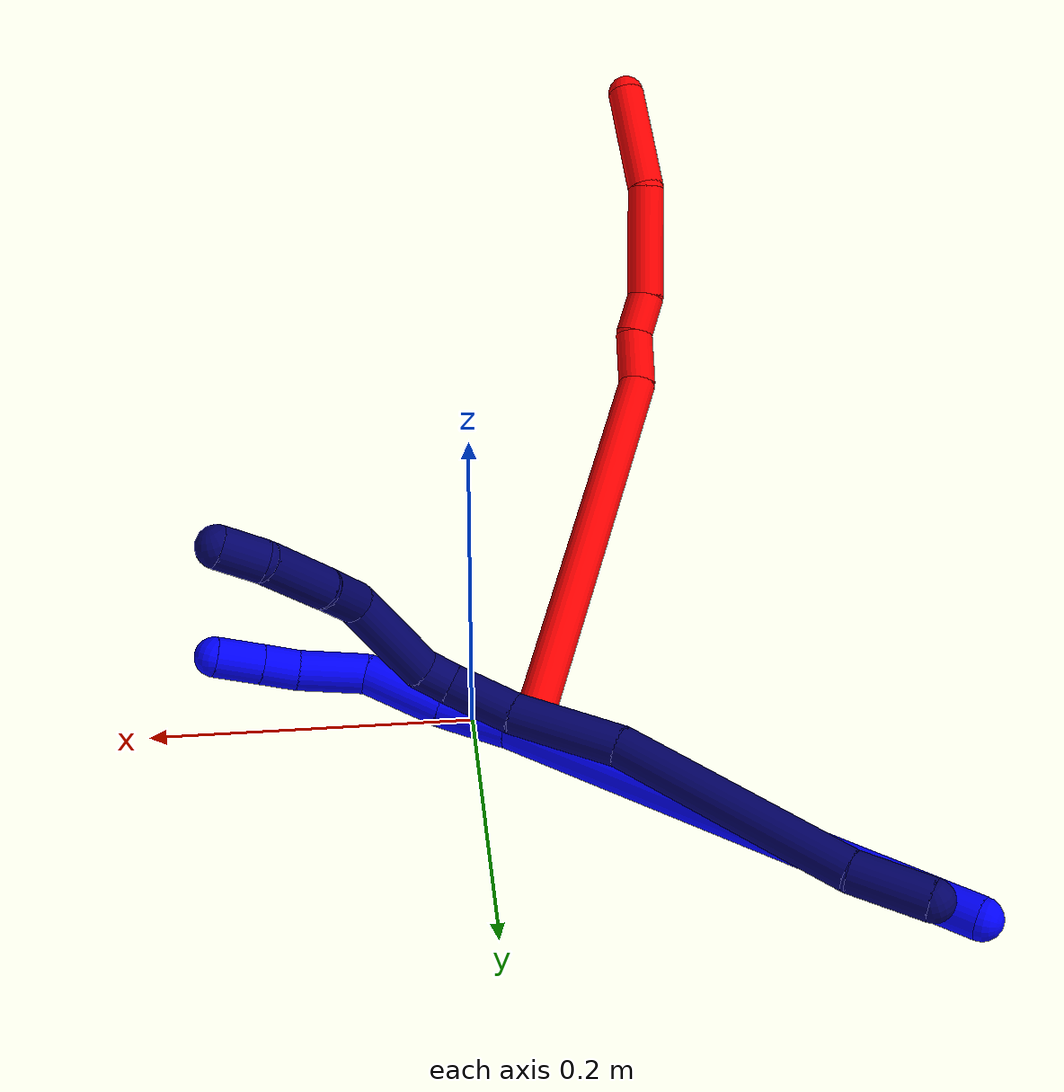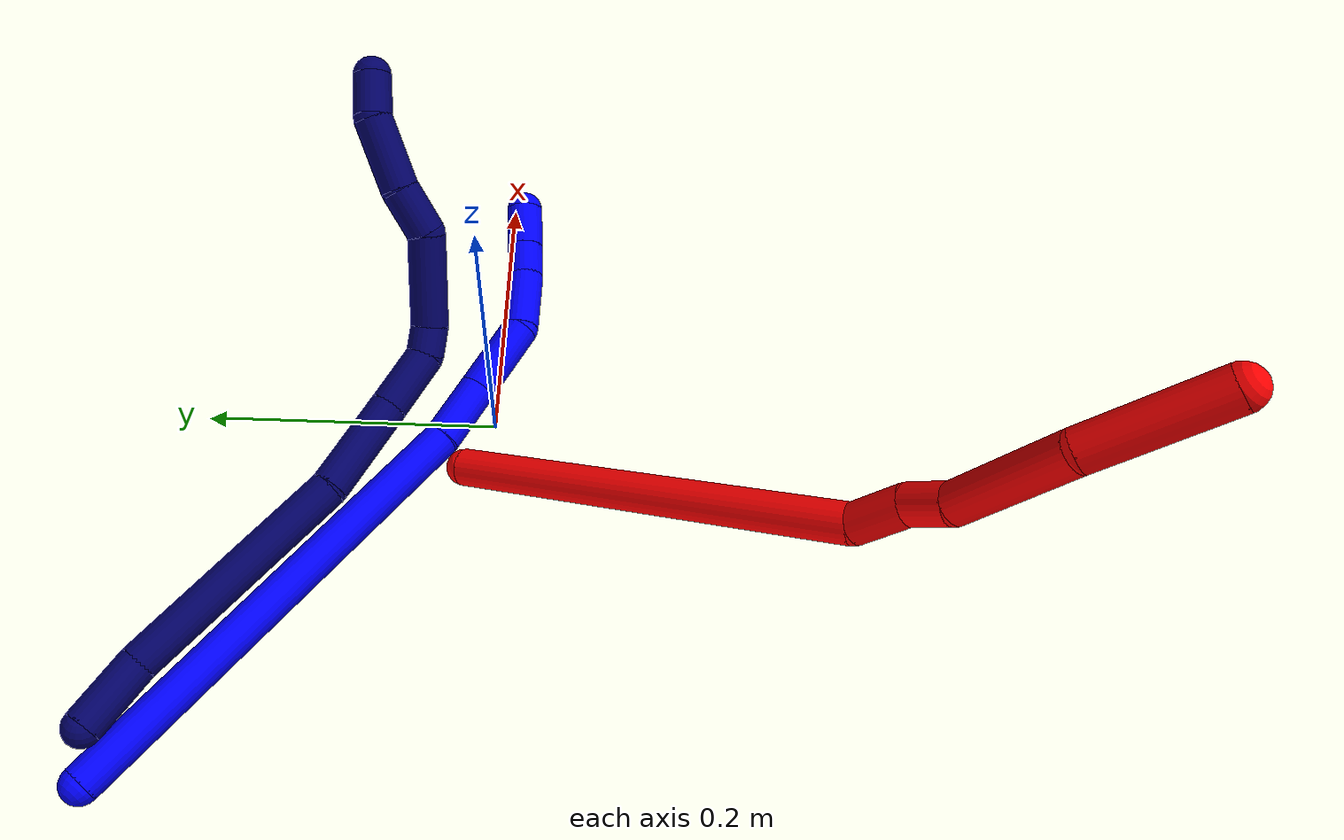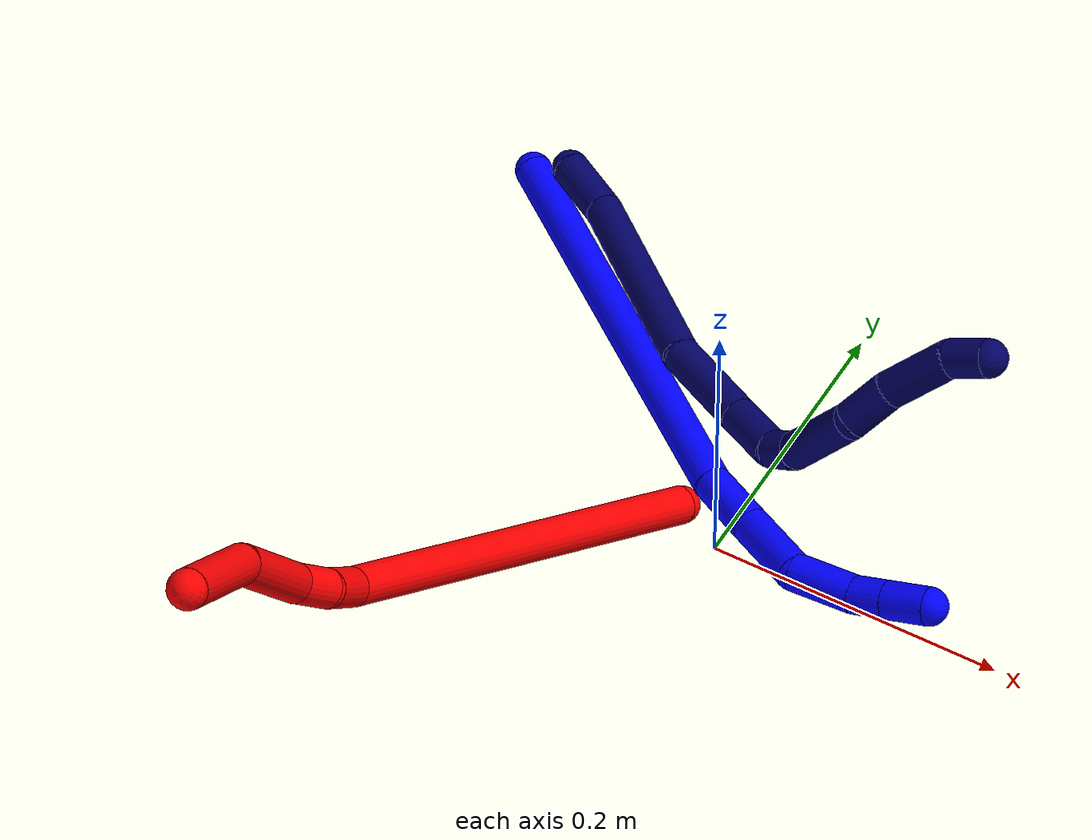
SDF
<sdf version="1.7">
 <world name="default">
  <model name="photoneo_s_sensor">
   <static>1</static>
   <pose>0 0 2 1.57079 1.57079 3.14159</pose>
   <link name="link">
    <inertial><mass>0.1</mass></inertial>
    <sensor name="sensor" type="depth">
     <update_rate>30</update_rate>
     <camera>
      <horizontal_fov>1.22</horizontal_fov>
      <image><width>1920</width><height>1200</height><format>B8G8R8</format></image>
      <clip><near>0.1</near><far>4</far></clip>
      <depth_camera><output>points</output></depth_camera>
     </camera>
     <plugin name="camera_plugin" filename="libgazebo_ros_depth_camera.so">
      <baseline>0.2</baseline>
      <alwaysOn>1</alwaysOn>
      <updateRate>0.0</updateRate>
      <cameraName>camera_ir</cameraName>
      <imageTopicName>/camera/color/image_raw</imageTopicName>
      <cameraInfoTopicName>/camera/color/camera_info</cameraInfoTopicName>
      <depthImageTopicName>/camera/depth/image_raw</depthImageTopicName>
      <depthImageCameraInfoTopicName>/camera/depth/camera_info</depthImageCameraInfoTopicName>
      <pointCloudTopicName>/camera/depth/points</pointCloudTopicName>
      <frameName>fr_optical</frameName>
      <pointCloudCutoff>0.1</pointCloudCutoff>
      <pointCloudCutoffMax>2.0</pointCloudCutoffMax>
      <distortionK1>0</distortionK1>
      <distortionK2>0</distortionK2>
      <distortionK3>0</distortionK3>
      <distortionT1>0</distortionT1>
      <distortionT2>0</distortionT2>
      <CxPrime>0</CxPrime>
      <Cx>0</Cx>
      <Cy>0</Cy>
      <focalLength>0</focalLength>
      <hackBaseline>0</hackBaseline>
     </plugin>
    </sensor>
   </link>
  </model>
  <model name="bin">
   <static>1</static>
   <link name="bottom">
    <collision name="collision-bottom">
     <pose>0 0 -0.01 0 -0 0</pose>
     <geometry><box><size>0.8 0.6 0.02</size></box></geometry>
     <surface>
      <friction><ode><mu>100</mu><mu2>100</mu2></ode></friction>
      <contact><collide_bitmask>65535</collide_bitmask></contact>
     </surface>
    </collision>
   </link>
   <link name="west_wall">
    <collision name="collision-west_wall">
     <pose>-0.41 0 0.1 0 -0 0</pose>
     <geometry><box><size>0.02 0.6 0.2</size></box></geometry>
     <surface>
      <friction><ode><mu>100</mu><mu2>100</mu2></ode></friction>
      <contact><collide_bitmask>65535</collide_bitmask></contact>
     </surface>
    </collision>
   </link>
   <link name="east_wall">
    <collision name="collision-east_wall">
     <pose>0.41 0 0.1 0 -0 0</pose>
     <geometry><box><size>0.02 0.6 0.2</size></box></geometry>
     <surface>
      <friction><ode><mu>100</mu><mu2>100</mu2></ode></friction>
      <contact><collide_bitmask>65535</collide_bitmask></contact>
     </surface>
    </collision>
   </link>
   <link name="south_wall">
    <collision name="collision-south_wall">
     <pose>0 -0.31 0.1 0 -0 0</pose>
     <geometry><box><size>0.8 0.02 0.2</size></box></geometry>
     <surface>
      <friction><ode><mu>100</mu><mu2>100</mu2></ode></friction>
      <contact><collide_bitmask>65535</collide_bitmask></contact>
     </surface>
    </collision>
   </link>
   <link name="north_wall">
    <collision name="collision-north_wall">
     <pose>0 0.31 0.1 0 -0 0</pose>
     <geometry><box><size>0.8 0.02 0.2</size></box></geometry>
     <surface>
      <friction><ode><mu>100</mu><mu2>100</mu2></ode></friction>
      <contact><collide_bitmask>65535</collide_bitmask></contact>
     </surface>
    </collision>
   </link>
  </model>
  <model name="1">
   <static>0</static>
   <link name="1">
    <collision name="collision-cylinder-e_1_1_4">
     <pose>-0.007108 -0.011797 -0.151948 3.06411 -0.046606 -1.08274</pose>
     <geometry><cylinder><radius>0.0125</radius><length>0.305142</length></cylinder></geometry>
     <surface>
      <friction><ode><mu>1.16</mu><mu2>1.16</mu2><slip1>0</slip1><slip2>0</slip2></ode></friction>
      <contact><ode><kp>1e+06</kp><kd>1</kd><max_vel>0</max_vel><min_depth>0.001</min_depth></ode></contact>
     </surface>
    </collision>
    <visual name="visual-cylinder-e_1_1_4">
     <pose>-0.007108 -0.011797 -0.151948 3.06411 -0.046606 -1.08274</pose>
     <geometry><cylinder><radius>0.0125</radius><length>0.305142</length></cylinder></geometry>
     <material><ambient>0 0 1 1</ambient></material>
    </visual>
    <collision name="collision-cylinder-e_2_4_5">
     <pose>-0.011288 -0.024881 -0.326158 3.08386 0.130588 2.30991</pose>
     <geometry><cylinder><radius>0.0125</radius><length>0.044981</length></cylinder></geometry>
     <surface>
      <friction><ode><mu>1.16</mu><mu2>1.16</mu2><slip1>0</slip1><slip2>0</slip2></ode></friction>
      <contact><ode><kp>1e+06</kp><kd>1</kd><max_vel>0</max_vel><min_depth>0.001</min_depth></ode></contact>
     </surface>
    </collision>
    <visual name="visual-cylinder-e_2_4_5">
     <pose>-0.011288 -0.024881 -0.326158 3.08386 0.130588 2.30991</pose>
     <geometry><cylinder><radius>0.0125</radius><length>0.044981</length></cylinder></geometry>
     <material><ambient>0 0 1 1</ambient></material>
    </visual>
    <collision name="collision-cylinder-e_3_5_6">
     <pose>-0.004905 -0.030956 -0.374732 2.9616 0.12845 1.23838</pose>
     <geometry><cylinder><radius>0.0125</radius><length>0.053933</length></cylinder></geometry>
     <surface>
      <friction><ode><mu>1.16</mu><mu2>1.16</mu2><slip1>0</slip1><slip2>0</slip2></ode></friction>
      <contact><ode><kp>1e+06</kp><kd>1</kd><max_vel>0</max_vel><min_depth>0.001</min_depth></ode></contact>
     </surface>
    </collision>
    <visual name="visual-cylinder-e_3_5_6">
     <pose>-0.004905 -0.030956 -0.374732 2.9616 0.12845 1.23838</pose>
     <geometry><cylinder><radius>0.0125</radius><length>0.053933</length></cylinder></geometry>
     <material><ambient>0 0 1 1</ambient></material>
    </visual>
    <collision name="collision-cylinder-e_4_6_7">
     <pose>0.010289 -0.034239 -0.41915 -3.05865 0.573642 -2.86207</pose>
     <geometry><cylinder><radius>0.0125</radius><length>0.043262</length></cylinder></geometry>
     <surface>
      <friction><ode><mu>1.16</mu><mu2>1.16</mu2><slip1>0</slip1><slip2>0</slip2></ode></friction>
      <contact><ode><kp>1e+06</kp><kd>1</kd><max_vel>0</max_vel><min_depth>0.001</min_depth></ode></contact>
     </surface>
    </collision>
    <visual name="visual-cylinder-e_4_6_7">
     <pose>0.010289 -0.034239 -0.41915 -3.05865 0.573642 -2.86207</pose>
     <geometry><cylinder><radius>0.0125</radius><length>0.043262</length></cylinder></geometry>
     <material><ambient>0 0 1 1</ambient></material>
    </visual>
    <collision name="collision-cylinder-e_5_7_8">
     <pose>0.029648 -0.033719 -0.445978 3.02912 0.714929 2.8424</pose>
     <geometry><cylinder><radius>0.0125</radius><length>0.023247</length></cylinder></geometry>
     <surface>
      <friction><ode><mu>1.16</mu><mu2>1.16</mu2><slip1>0</slip1><slip2>0</slip2></ode></friction>
      <contact><ode><kp>1e+06</kp><kd>1</kd><max_vel>0</max_vel><min_depth>0.001</min_depth></ode></contact>
     </surface>
    </collision>
    <visual name="visual-cylinder-e_5_7_8">
     <pose>0.029648 -0.033719 -0.445978 3.02912 0.714929 2.8424</pose>
     <geometry><cylinder><radius>0.0125</radius><length>0.023247</length></cylinder></geometry>
     <material><ambient>0 0 1 1</ambient></material>
    </visual>
    <collision name="collision-cylinder-e_6_8_2">
     <pose>0.046965 -0.035866 -0.46571 3.0364 0.719322 2.8634</pose>
     <geometry><cylinder><radius>0.0125</radius><length>0.029435</length></cylinder></geometry>
     <surface>
      <friction><ode><mu>1.16</mu><mu2>1.16</mu2><slip1>0</slip1><slip2>0</slip2></ode></friction>
      <contact><ode><kp>1e+06</kp><kd>1</kd><max_vel>0</max_vel><min_depth>0.001</min_depth></ode></contact>
     </surface>
    </collision>
    <visual name="visual-cylinder-e_6_8_2">
     <pose>0.046965 -0.035866 -0.46571 3.0364 0.719322 2.8634</pose>
     <geometry><cylinder><radius>0.0125</radius><length>0.029435</length></cylinder></geometry>
     <material><ambient>0 0 1 1</ambient></material>
    </visual>
    <collision name="collision-sphere-2">
     <pose>0.056662 -0.037029 -0.47672 0 -0 0</pose>
     <geometry><sphere><radius>0.0125</radius></sphere></geometry>
     <surface>
      <friction><ode><mu>1.16</mu><mu2>1.16</mu2><slip1>0</slip1><slip2>0</slip2></ode></friction>
      <contact><ode><kp>1e+06</kp><kd>1</kd><max_vel>0</max_vel><min_depth>0.001</min_depth></ode></contact>
     </surface>
    </collision>
    <visual name="visual-sphere-2">
     <pose>0.056662 -0.037029 -0.47672 0 -0 0</pose>
     <geometry><sphere><radius>0.0125</radius></sphere></geometry>
     <material><ambient>0 0 1 1</ambient></material>
    </visual>
    <collision name="collision-sphere-4">
     <pose>-0.014216 -0.023595 -0.303896 0 -0 0</pose>
     <geometry><sphere><radius>0.0125</radius></sphere></geometry>
     <surface>
      <friction><ode><mu>1.16</mu><mu2>1.16</mu2><slip1>0</slip1><slip2>0</slip2></ode></friction>
      <contact><ode><kp>1e+06</kp><kd>1</kd><max_vel>0</max_vel><min_depth>0.001</min_depth></ode></contact>
     </surface>
    </collision>
    <visual name="visual-sphere-4">
     <pose>-0.014216 -0.023595 -0.303896 0 -0 0</pose>
     <geometry><sphere><radius>0.0125</radius></sphere></geometry>
     <material><ambient>0 0 1 1</ambient></material>
    </visual>
    <collision name="collision-sphere-1">
     <geometry><sphere><radius>0.0125</radius></sphere></geometry>
     <surface>
      <friction><ode><mu>1.16</mu><mu2>1.16</mu2><slip1>0</slip1><slip2>0</slip2></ode></friction>
      <contact><ode><kp>1e+06</kp><kd>1</kd><max_vel>0</max_vel><min_depth>0.001</min_depth></ode></contact>
     </surface>
    </collision>
    <visual name="visual-sphere-1">
     <geometry><sphere><radius>0.0125</radius></sphere></geometry>
     <material><ambient>0 0 1 1</ambient></material>
    </visual>
    <collision name="collision-sphere-8">
     <pose>0.037268 -0.034704 -0.4547 0 -0 0</pose>
     <geometry><sphere><radius>0.0125</radius></sphere></geometry>
     <surface>
      <friction><ode><mu>1.16</mu><mu2>1.16</mu2><slip1>0</slip1><slip2>0</slip2></ode></friction>
      <contact><ode><kp>1e+06</kp><kd>1</kd><max_vel>0</max_vel><min_depth>0.001</min_depth></ode></contact>
     </surface>
    </collision>
    <visual name="visual-sphere-8">
     <pose>0.037268 -0.034704 -0.4547 0 -0 0</pose>
     <geometry><sphere><radius>0.0125</radius></sphere></geometry>
     <material><ambient>0 0 1 1</ambient></material>
    </visual>
    <collision name="collision-sphere-5">
     <pose>-0.008359 -0.026168 -0.34842 0 -0 0</pose>
     <geometry><sphere><radius>0.0125</radius></sphere></geometry>
     <surface>
      <friction><ode><mu>1.16</mu><mu2>1.16</mu2><slip1>0</slip1><slip2>0</slip2></ode></friction>
      <contact><ode><kp>1e+06</kp><kd>1</kd><max_vel>0</max_vel><min_depth>0.001</min_depth></ode></contact>
     </surface>
    </collision>
    <visual name="visual-sphere-5">
     <pose>-0.008359 -0.026168 -0.34842 0 -0 0</pose>
     <geometry><sphere><radius>0.0125</radius></sphere></geometry>
     <material><ambient>0 0 1 1</ambient></material>
    </visual>
    <collision name="collision-sphere-6">
     <pose>-0.00145 -0.035744 -0.401044 0 -0 0</pose>
     <geometry><sphere><radius>0.0125</radius></sphere></geometry>
     <surface>
      <friction><ode><mu>1.16</mu><mu2>1.16</mu2><slip1>0</slip1><slip2>0</slip2></ode></friction>
      <contact><ode><kp>1e+06</kp><kd>1</kd><max_vel>0</max_vel><min_depth>0.001</min_depth></ode></contact>
     </surface>
    </collision>
    <visual name="visual-sphere-6">
     <pose>-0.00145 -0.035744 -0.401044 0 -0 0</pose>
     <geometry><sphere><radius>0.0125</radius></sphere></geometry>
     <material><ambient>0 0 1 1</ambient></material>
    </visual>
    <collision name="collision-sphere-7">
     <pose>0.022028 -0.032733 -0.437256 0 -0 0</pose>
     <geometry><sphere><radius>0.0125</radius></sphere></geometry>
     <surface>
      <friction><ode><mu>1.16</mu><mu2>1.16</mu2><slip1>0</slip1><slip2>0</slip2></ode></friction>
      <contact><ode><kp>1e+06</kp><kd>1</kd><max_vel>0</max_vel><min_depth>0.001</min_depth></ode></contact>
     </surface>
    </collision>
    <visual name="visual-sphere-7">
     <pose>0.022028 -0.032733 -0.437256 0 -0 0</pose>
     <geometry><sphere><radius>0.0125</radius></sphere></geometry>
     <material><ambient>0 0 1 1</ambient></material>
    </visual>
    <inertial>
     <pose>-0.000849 -0.019419 -0.246912 0 -0 0</pose>
     <mass>0.5</mass>
     <inertia>
      <ixx>-0.000972</ixx>
      <ixy>0</ixy>
      <ixz>0</ixz>
      <iyy>-0.003172</iyy>
      <iyz>0</iyz>
      <izz>0.00025</izz>
     </inertia>
    </inertial>
   </link>
   <pose>-0.262812 0.220316 0.011496 -1.53373 -0.384462 0.971792</pose>
  </model>
  <model name="2">
   <static>0</static>
   <link name="2">
    <collision name="collision-cylinder-e_1_1_4">
     <pose>-0.024727 -0.082832 0.10978 0.646395 -0.1779 -0.059726</pose>
     <geometry><cylinder><radius>0.0125</radius><length>0.279459</length></cylinder></geometry>
     <surface>
      <friction><ode><mu>1.16</mu><mu2>1.16</mu2><slip1>0</slip1><slip2>0</slip2></ode></friction>
      <contact><ode><kp>1e+06</kp><kd>1</kd><max_vel>0</max_vel><min_depth>0.001</min_depth></ode></contact>
     </surface>
    </collision>
    <visual name="visual-cylinder-e_1_1_4">
     <pose>-0.024727 -0.082832 0.10978 0.646395 -0.1779 -0.059726</pose>
     <geometry><cylinder><radius>0.0125</radius><length>0.279459</length></cylinder></geometry>
     <material><ambient>1 0 0 1</ambient></material>
    </visual>
    <collision name="collision-cylinder-e_2_4_5">
     <pose>-0.049421 -0.169401 0.23727 0.207919 0.001803 0.000188</pose>
     <geometry><cylinder><radius>0.0125</radius><length>0.036201</length></cylinder></geometry>
     <surface>
      <friction><ode><mu>1.16</mu><mu2>1.16</mu2><slip1>0</slip1><slip2>0</slip2></ode></friction>
      <contact><ode><kp>1e+06</kp><kd>1</kd><max_vel>0</max_vel><min_depth>0.001</min_depth></ode></contact>
     </surface>
    </collision>
    <visual name="visual-cylinder-e_2_4_5">
     <pose>-0.049421 -0.169401 0.23727 0.207919 0.001803 0.000188</pose>
     <geometry><cylinder><radius>0.0125</radius><length>0.036201</length></cylinder></geometry>
     <material><ambient>1 0 0 1</ambient></material>
    </visual>
    <collision name="collision-cylinder-e_3_5_6">
     <pose>-0.053813 -0.17755 0.267924 0.328542 -0.312954 -0.052292</pose>
     <geometry><cylinder><radius>0.0125</radius><length>0.028745</length></cylinder></geometry>
     <surface>
      <friction><ode><mu>1.16</mu><mu2>1.16</mu2><slip1>0</slip1><slip2>0</slip2></ode></friction>
      <contact><ode><kp>1e+06</kp><kd>1</kd><max_vel>0</max_vel><min_depth>0.001</min_depth></ode></contact>
     </surface>
    </collision>
    <visual name="visual-cylinder-e_3_5_6">
     <pose>-0.053813 -0.17755 0.267924 0.328542 -0.312954 -0.052292</pose>
     <geometry><cylinder><radius>0.0125</radius><length>0.028745</length></cylinder></geometry>
     <material><ambient>1 0 0 1</ambient></material>
    </visual>
    <collision name="collision-cylinder-e_4_6_7">
     <pose>-0.062084 -0.184664 0.319156 0.070458 -0.099862 -0.003522</pose>
     <geometry><cylinder><radius>0.0125</radius><length>0.077154</length></cylinder></geometry>
     <surface>
      <friction><ode><mu>1.16</mu><mu2>1.16</mu2><slip1>0</slip1><slip2>0</slip2></ode></friction>
      <contact><ode><kp>1e+06</kp><kd>1</kd><max_vel>0</max_vel><min_depth>0.001</min_depth></ode></contact>
     </surface>
    </collision>
    <visual name="visual-cylinder-e_4_6_7">
     <pose>-0.062084 -0.184664 0.319156 0.070458 -0.099862 -0.003522</pose>
     <geometry><cylinder><radius>0.0125</radius><length>0.077154</length></cylinder></geometry>
     <material><ambient>1 0 0 1</ambient></material>
    </visual>
    <collision name="collision-cylinder-e_5_7_2">
     <pose>-0.059961 -0.198214 0.394661 0.283631 0.152792 0.021856</pose>
     <geometry><cylinder><radius>0.0125</radius><length>0.078442</length></cylinder></geometry>
     <surface>
      <friction><ode><mu>1.16</mu><mu2>1.16</mu2><slip1>0</slip1><slip2>0</slip2></ode></friction>
      <contact><ode><kp>1e+06</kp><kd>1</kd><max_vel>0</max_vel><min_depth>0.001</min_depth></ode></contact>
     </surface>
    </collision>
    <visual name="visual-cylinder-e_5_7_2">
     <pose>-0.059961 -0.198214 0.394661 0.283631 0.152792 0.021856</pose>
     <geometry><cylinder><radius>0.0125</radius><length>0.078442</length></cylinder></geometry>
     <material><ambient>1 0 0 1</ambient></material>
    </visual>
    <collision name="collision-sphere-2">
     <pose>-0.053991 -0.209062 0.431876 0 -0 0</pose>
     <geometry><sphere><radius>0.0125</radius></sphere></geometry>
     <surface>
      <friction><ode><mu>1.16</mu><mu2>1.16</mu2><slip1>0</slip1><slip2>0</slip2></ode></friction>
      <contact><ode><kp>1e+06</kp><kd>1</kd><max_vel>0</max_vel><min_depth>0.001</min_depth></ode></contact>
     </surface>
    </collision>
    <visual name="visual-sphere-2">
     <pose>-0.053991 -0.209062 0.431876 0 -0 0</pose>
     <geometry><sphere><radius>0.0125</radius></sphere></geometry>
     <material><ambient>1 0 0 1</ambient></material>
    </visual>
    <collision name="collision-sphere-7">
     <pose>-0.06593 -0.187366 0.357446 0 -0 0</pose>
     <geometry><sphere><radius>0.0125</radius></sphere></geometry>
     <surface>
      <friction><ode><mu>1.16</mu><mu2>1.16</mu2><slip1>0</slip1><slip2>0</slip2></ode></friction>
      <contact><ode><kp>1e+06</kp><kd>1</kd><max_vel>0</max_vel><min_depth>0.001</min_depth></ode></contact>
     </surface>
    </collision>
    <visual name="visual-sphere-7">
     <pose>-0.06593 -0.187366 0.357446 0 -0 0</pose>
     <geometry><sphere><radius>0.0125</radius></sphere></geometry>
     <material><ambient>1 0 0 1</ambient></material>
    </visual>
    <collision name="collision-sphere-6">
     <pose>-0.058238 -0.181962 0.280867 0 -0 0</pose>
     <geometry><sphere><radius>0.0125</radius></sphere></geometry>
     <surface>
      <friction><ode><mu>1.16</mu><mu2>1.16</mu2><slip1>0</slip1><slip2>0</slip2></ode></friction>
      <contact><ode><kp>1e+06</kp><kd>1</kd><max_vel>0</max_vel><min_depth>0.001</min_depth></ode></contact>
     </surface>
    </collision>
    <visual name="visual-sphere-6">
     <pose>-0.058238 -0.181962 0.280867 0 -0 0</pose>
     <geometry><sphere><radius>0.0125</radius></sphere></geometry>
     <material><ambient>1 0 0 1</ambient></material>
    </visual>
    <collision name="collision-sphere-5">
     <pose>-0.049388 -0.173137 0.254981 0 -0 0</pose>
     <geometry><sphere><radius>0.0125</radius></sphere></geometry>
     <surface>
      <friction><ode><mu>1.16</mu><mu2>1.16</mu2><slip1>0</slip1><slip2>0</slip2></ode></friction>
      <contact><ode><kp>1e+06</kp><kd>1</kd><max_vel>0</max_vel><min_depth>0.001</min_depth></ode></contact>
     </surface>
    </collision>
    <visual name="visual-sphere-5">
     <pose>-0.049388 -0.173137 0.254981 0 -0 0</pose>
     <geometry><sphere><radius>0.0125</radius></sphere></geometry>
     <material><ambient>1 0 0 1</ambient></material>
    </visual>
    <collision name="collision-sphere-1">
     <geometry><sphere><radius>0.0125</radius></sphere></geometry>
     <surface>
      <friction><ode><mu>1.16</mu><mu2>1.16</mu2><slip1>0</slip1><slip2>0</slip2></ode></friction>
      <contact><ode><kp>1e+06</kp><kd>1</kd><max_vel>0</max_vel><min_depth>0.001</min_depth></ode></contact>
     </surface>
    </collision>
    <visual name="visual-sphere-1">
     <geometry><sphere><radius>0.0125</radius></sphere></geometry>
     <material><ambient>1 0 0 1</ambient></material>
    </visual>
    <collision name="collision-sphere-4">
     <pose>-0.049454 -0.165665 0.21956 0 -0 0</pose>
     <geometry><sphere><radius>0.0125</radius></sphere></geometry>
     <surface>
      <friction><ode><mu>1.16</mu><mu2>1.16</mu2><slip1>0</slip1><slip2>0</slip2></ode></friction>
      <contact><ode><kp>1e+06</kp><kd>1</kd><max_vel>0</max_vel><min_depth>0.001</min_depth></ode></contact>
     </surface>
    </collision>
    <visual name="visual-sphere-4">
     <pose>-0.049454 -0.165665 0.21956 0 -0 0</pose>
     <geometry><sphere><radius>0.0125</radius></sphere></geometry>
     <material><ambient>1 0 0 1</ambient></material>
    </visual>
    <inertial>
     <pose>-0.039479 -0.12836 0.205104 0 -0 0</pose>
     <mass>0.5</mass>
     <inertia>
      <ixx>0.001779</ixx>
      <ixy>0</ixy>
      <ixz>0</ixz>
      <iyy>0.001437</iyy>
      <iyz>0</iyz>
      <izz>0.001458</izz>
     </inertia>
    </inertial>
   </link>
   <pose>-0.034921 0.01782 0.004035 0.538499 0.259643 -0.305573</pose>
  </model>
  <model name="7">
   <static>0</static>
   <link name="7">
    <collision name="collision-cylinder-e_1_1_4">
     <pose>0.018188 -0.012007 0.008689 0.944366 0.887063 0.476083</pose>
     <geometry><cylinder><radius>0.0125</radius><length>0.046924</length></cylinder></geometry>
     <surface>
      <friction><ode><mu>1.16</mu><mu2>1.16</mu2><slip1>0</slip1><slip2>0</slip2></ode></friction>
      <contact><ode><kp>1e+06</kp><kd>1</kd><max_vel>0</max_vel><min_depth>0.001</min_depth></ode></contact>
     </surface>
    </collision>
    <visual name="visual-cylinder-e_1_1_4">
     <pose>0.018188 -0.012007 0.008689 0.944366 0.887063 0.476083</pose>
     <geometry><cylinder><radius>0.0125</radius><length>0.046924</length></cylinder></geometry>
     <material><ambient>0.003922 0 0.403922 1</ambient></material>
    </visual>
    <collision name="collision-cylinder-e_2_4_5">
     <pose>0.086391 -0.072448 0.049248 0.988808 0.711771 0.395512</pose>
     <geometry><cylinder><radius>0.0125</radius><length>0.153141</length></cylinder></geometry>
     <surface>
      <friction><ode><mu>1.16</mu><mu2>1.16</mu2><slip1>0</slip1><slip2>0</slip2></ode></friction>
      <contact><ode><kp>1e+06</kp><kd>1</kd><max_vel>0</max_vel><min_depth>0.001</min_depth></ode></contact>
     </surface>
    </collision>
    <visual name="visual-cylinder-e_2_4_5">
     <pose>0.086391 -0.072448 0.049248 0.988808 0.711771 0.395512</pose>
     <geometry><cylinder><radius>0.0125</radius><length>0.153141</length></cylinder></geometry>
     <material><ambient>0.003922 0 0.403922 1</ambient></material>
    </visual>
    <collision name="collision-cylinder-e_3_5_6">
     <pose>0.16342 -0.135898 0.094209 0.853793 0.935439 0.451672</pose>
     <geometry><cylinder><radius>0.0125</radius><length>0.067129</length></cylinder></geometry>
     <surface>
      <friction><ode><mu>1.16</mu><mu2>1.16</mu2><slip1>0</slip1><slip2>0</slip2></ode></friction>
      <contact><ode><kp>1e+06</kp><kd>1</kd><max_vel>0</max_vel><min_depth>0.001</min_depth></ode></contact>
     </surface>
    </collision>
    <visual name="visual-cylinder-e_3_5_6">
     <pose>0.16342 -0.135898 0.094209 0.853793 0.935439 0.451672</pose>
     <geometry><cylinder><radius>0.0125</radius><length>0.067129</length></cylinder></geometry>
     <material><ambient>0.003922 0 0.403922 1</ambient></material>
    </visual>
    <collision name="collision-cylinder-e_4_6_7">
     <pose>0.205773 -0.160679 0.117987 0.740341 0.81419 0.331577</pose>
     <geometry><cylinder><radius>0.0125</radius><length>0.042186</length></cylinder></geometry>
     <surface>
      <friction><ode><mu>1.16</mu><mu2>1.16</mu2><slip1>0</slip1><slip2>0</slip2></ode></friction>
      <contact><ode><kp>1e+06</kp><kd>1</kd><max_vel>0</max_vel><min_depth>0.001</min_depth></ode></contact>
     </surface>
    </collision>
    <visual name="visual-cylinder-e_4_6_7">
     <pose>0.205773 -0.160679 0.117987 0.740341 0.81419 0.331577</pose>
     <geometry><cylinder><radius>0.0125</radius><length>0.042186</length></cylinder></geometry>
     <material><ambient>0.003922 0 0.403922 1</ambient></material>
    </visual>
    <collision name="collision-cylinder-e_5_7_8">
     <pose>0.227893 -0.170919 0.136361 0.061476 0.722184 0.023223</pose>
     <geometry><cylinder><radius>0.0125</radius><length>0.02052</length></cylinder></geometry>
     <surface>
      <friction><ode><mu>1.16</mu><mu2>1.16</mu2><slip1>0</slip1><slip2>0</slip2></ode></friction>
      <contact><ode><kp>1e+06</kp><kd>1</kd><max_vel>0</max_vel><min_depth>0.001</min_depth></ode></contact>
     </surface>
    </collision>
    <visual name="visual-cylinder-e_5_7_8">
     <pose>0.227893 -0.170919 0.136361 0.061476 0.722184 0.023223</pose>
     <geometry><cylinder><radius>0.0125</radius><length>0.02052</length></cylinder></geometry>
     <material><ambient>0.003922 0 0.403922 1</ambient></material>
    </visual>
    <collision name="collision-cylinder-e_6_8_9">
     <pose>0.245501 -0.16724 0.172933 -0.142774 0.355203 -0.025669</pose>
     <geometry><cylinder><radius>0.0125</radius><length>0.062256</length></cylinder></geometry>
     <surface>
      <friction><ode><mu>1.16</mu><mu2>1.16</mu2><slip1>0</slip1><slip2>0</slip2></ode></friction>
      <contact><ode><kp>1e+06</kp><kd>1</kd><max_vel>0</max_vel><min_depth>0.001</min_depth></ode></contact>
     </surface>
    </collision>
    <visual name="visual-cylinder-e_6_8_9">
     <pose>0.245501 -0.16724 0.172933 -0.142774 0.355203 -0.025669</pose>
     <geometry><cylinder><radius>0.0125</radius><length>0.062256</length></cylinder></geometry>
     <material><ambient>0.003922 0 0.403922 1</ambient></material>
    </visual>
    <collision name="collision-cylinder-e_7_9_10">
     <pose>0.261887 -0.153205 0.213524 -0.701227 0.348209 -0.128474</pose>
     <geometry><cylinder><radius>0.0125</radius><length>0.032591</length></cylinder></geometry>
     <surface>
      <friction><ode><mu>1.16</mu><mu2>1.16</mu2><slip1>0</slip1><slip2>0</slip2></ode></friction>
      <contact><ode><kp>1e+06</kp><kd>1</kd><max_vel>0</max_vel><min_depth>0.001</min_depth></ode></contact>
     </surface>
    </collision>
    <visual name="visual-cylinder-e_7_9_10">
     <pose>0.261887 -0.153205 0.213524 -0.701227 0.348209 -0.128474</pose>
     <geometry><cylinder><radius>0.0125</radius><length>0.032591</length></cylinder></geometry>
     <material><ambient>0.003922 0 0.403922 1</ambient></material>
    </visual>
    <collision name="collision-cylinder-e_8_10_11">
     <pose>0.278841 -0.132499 0.243078 -0.545052 0.499634 -0.142376</pose>
     <geometry><cylinder><radius>0.0125</radius><length>0.047565</length></cylinder></geometry>
     <surface>
      <friction><ode><mu>1.16</mu><mu2>1.16</mu2><slip1>0</slip1><slip2>0</slip2></ode></friction>
      <contact><ode><kp>1e+06</kp><kd>1</kd><max_vel>0</max_vel><min_depth>0.001</min_depth></ode></contact>
     </surface>
    </collision>
    <visual name="visual-cylinder-e_8_10_11">
     <pose>0.278841 -0.132499 0.243078 -0.545052 0.499634 -0.142376</pose>
     <geometry><cylinder><radius>0.0125</radius><length>0.047565</length></cylinder></geometry>
     <material><ambient>0.003922 0 0.403922 1</ambient></material>
    </visual>
    <collision name="collision-cylinder-e_9_11_2">
     <pose>0.300402 -0.11989 0.270153 -0.191328 0.824774 -0.083908</pose>
     <geometry><cylinder><radius>0.0125</radius><length>0.027688</length></cylinder></geometry>
     <surface>
      <friction><ode><mu>1.16</mu><mu2>1.16</mu2><slip1>0</slip1><slip2>0</slip2></ode></friction>
      <contact><ode><kp>1e+06</kp><kd>1</kd><max_vel>0</max_vel><min_depth>0.001</min_depth></ode></contact>
     </surface>
    </collision>
    <visual name="visual-cylinder-e_9_11_2">
     <pose>0.300402 -0.11989 0.270153 -0.191328 0.824774 -0.083908</pose>
     <geometry><cylinder><radius>0.0125</radius><length>0.027688</length></cylinder></geometry>
     <material><ambient>0.003922 0 0.403922 1</ambient></material>
    </visual>
    <collision name="collision-sphere-2">
     <pose>0.310569 -0.118103 0.279378 0 -0 0</pose>
     <geometry><sphere><radius>0.0125</radius></sphere></geometry>
     <surface>
      <friction><ode><mu>1.16</mu><mu2>1.16</mu2><slip1>0</slip1><slip2>0</slip2></ode></friction>
      <contact><ode><kp>1e+06</kp><kd>1</kd><max_vel>0</max_vel><min_depth>0.001</min_depth></ode></contact>
     </surface>
    </collision>
    <visual name="visual-sphere-2">
     <pose>0.310569 -0.118103 0.279378 0 -0 0</pose>
     <geometry><sphere><radius>0.0125</radius></sphere></geometry>
     <material><ambient>0.003922 0 0.403922 1</ambient></material>
    </visual>
    <collision name="collision-sphere-11">
     <pose>0.290235 -0.121677 0.260928 0 -0 0</pose>
     <geometry><sphere><radius>0.0125</radius></sphere></geometry>
     <surface>
      <friction><ode><mu>1.16</mu><mu2>1.16</mu2><slip1>0</slip1><slip2>0</slip2></ode></friction>
      <contact><ode><kp>1e+06</kp><kd>1</kd><max_vel>0</max_vel><min_depth>0.001</min_depth></ode></contact>
     </surface>
    </collision>
    <visual name="visual-sphere-11">
     <pose>0.290235 -0.121677 0.260928 0 -0 0</pose>
     <geometry><sphere><radius>0.0125</radius></sphere></geometry>
     <material><ambient>0.003922 0 0.403922 1</ambient></material>
    </visual>
    <collision name="collision-sphere-10">
     <pose>0.267447 -0.143322 0.225228 0 -0 0</pose>
     <geometry><sphere><radius>0.0125</radius></sphere></geometry>
     <surface>
      <friction><ode><mu>1.16</mu><mu2>1.16</mu2><slip1>0</slip1><slip2>0</slip2></ode></friction>
      <contact><ode><kp>1e+06</kp><kd>1</kd><max_vel>0</max_vel><min_depth>0.001</min_depth></ode></contact>
     </surface>
    </collision>
    <visual name="visual-sphere-10">
     <pose>0.267447 -0.143322 0.225228 0 -0 0</pose>
     <geometry><sphere><radius>0.0125</radius></sphere></geometry>
     <material><ambient>0.003922 0 0.403922 1</ambient></material>
    </visual>
    <collision name="collision-sphere-9">
     <pose>0.256326 -0.163087 0.201821 0 -0 0</pose>
     <geometry><sphere><radius>0.0125</radius></sphere></geometry>
     <surface>
      <friction><ode><mu>1.16</mu><mu2>1.16</mu2><slip1>0</slip1><slip2>0</slip2></ode></friction>
      <contact><ode><kp>1e+06</kp><kd>1</kd><max_vel>0</max_vel><min_depth>0.001</min_depth></ode></contact>
     </surface>
    </collision>
    <visual name="visual-sphere-9">
     <pose>0.256326 -0.163087 0.201821 0 -0 0</pose>
     <geometry><sphere><radius>0.0125</radius></sphere></geometry>
     <material><ambient>0.003922 0 0.403922 1</ambient></material>
    </visual>
    <collision name="collision-sphere-4">
     <pose>0.036377 -0.024014 0.017378 0 -0 0</pose>
     <geometry><sphere><radius>0.0125</radius></sphere></geometry>
     <surface>
      <friction><ode><mu>1.16</mu><mu2>1.16</mu2><slip1>0</slip1><slip2>0</slip2></ode></friction>
      <contact><ode><kp>1e+06</kp><kd>1</kd><max_vel>0</max_vel><min_depth>0.001</min_depth></ode></contact>
     </surface>
    </collision>
    <visual name="visual-sphere-4">
     <pose>0.036377 -0.024014 0.017378 0 -0 0</pose>
     <geometry><sphere><radius>0.0125</radius></sphere></geometry>
     <material><ambient>0.003922 0 0.403922 1</ambient></material>
    </visual>
    <collision name="collision-sphere-1">
     <geometry><sphere><radius>0.0125</radius></sphere></geometry>
     <surface>
      <friction><ode><mu>1.16</mu><mu2>1.16</mu2><slip1>0</slip1><slip2>0</slip2></ode></friction>
      <contact><ode><kp>1e+06</kp><kd>1</kd><max_vel>0</max_vel><min_depth>0.001</min_depth></ode></contact>
     </surface>
    </collision>
    <visual name="visual-sphere-1">
     <geometry><sphere><radius>0.0125</radius></sphere></geometry>
     <material><ambient>0.003922 0 0.403922 1</ambient></material>
    </visual>
    <collision name="collision-sphere-8">
     <pose>0.234675 -0.171392 0.144045 0 -0 0</pose>
     <geometry><sphere><radius>0.0125</radius></sphere></geometry>
     <surface>
      <friction><ode><mu>1.16</mu><mu2>1.16</mu2><slip1>0</slip1><slip2>0</slip2></ode></friction>
      <contact><ode><kp>1e+06</kp><kd>1</kd><max_vel>0</max_vel><min_depth>0.001</min_depth></ode></contact>
     </surface>
    </collision>
    <visual name="visual-sphere-8">
     <pose>0.234675 -0.171392 0.144045 0 -0 0</pose>
     <geometry><sphere><radius>0.0125</radius></sphere></geometry>
     <material><ambient>0.003922 0 0.403922 1</ambient></material>
    </visual>
    <collision name="collision-sphere-5">
     <pose>0.136405 -0.120883 0.081119 0 -0 0</pose>
     <geometry><sphere><radius>0.0125</radius></sphere></geometry>
     <surface>
      <friction><ode><mu>1.16</mu><mu2>1.16</mu2><slip1>0</slip1><slip2>0</slip2></ode></friction>
      <contact><ode><kp>1e+06</kp><kd>1</kd><max_vel>0</max_vel><min_depth>0.001</min_depth></ode></contact>
     </surface>
    </collision>
    <visual name="visual-sphere-5">
     <pose>0.136405 -0.120883 0.081119 0 -0 0</pose>
     <geometry><sphere><radius>0.0125</radius></sphere></geometry>
     <material><ambient>0.003922 0 0.403922 1</ambient></material>
    </visual>
    <collision name="collision-sphere-6">
     <pose>0.190435 -0.150912 0.107298 0 -0 0</pose>
     <geometry><sphere><radius>0.0125</radius></sphere></geometry>
     <surface>
      <friction><ode><mu>1.16</mu><mu2>1.16</mu2><slip1>0</slip1><slip2>0</slip2></ode></friction>
      <contact><ode><kp>1e+06</kp><kd>1</kd><max_vel>0</max_vel><min_depth>0.001</min_depth></ode></contact>
     </surface>
    </collision>
    <visual name="visual-sphere-6">
     <pose>0.190435 -0.150912 0.107298 0 -0 0</pose>
     <geometry><sphere><radius>0.0125</radius></sphere></geometry>
     <material><ambient>0.003922 0 0.403922 1</ambient></material>
    </visual>
    <collision name="collision-sphere-7">
     <pose>0.221111 -0.170446 0.128677 0 -0 0</pose>
     <geometry><sphere><radius>0.0125</radius></sphere></geometry>
     <surface>
      <friction><ode><mu>1.16</mu><mu2>1.16</mu2><slip1>0</slip1><slip2>0</slip2></ode></friction>
      <contact><ode><kp>1e+06</kp><kd>1</kd><max_vel>0</max_vel><min_depth>0.001</min_depth></ode></contact>
     </surface>
    </collision>
    <visual name="visual-sphere-7">
     <pose>0.221111 -0.170446 0.128677 0 -0 0</pose>
     <geometry><sphere><radius>0.0125</radius></sphere></geometry>
     <material><ambient>0.003922 0 0.403922 1</ambient></material>
    </visual>
    <inertial>
     <pose>0.16762 -0.112186 0.117633 0 -0 0</pose>
     <mass>0.5</mass>
     <inertia>
      <ixx>0.000399</ixx>
      <ixy>0</ixy>
      <ixz>0</ixz>
      <iyy>0.000387</iyy>
      <iyz>0</iyz>
      <izz>-2.8e-05</izz>
     </inertia>
    </inertial>
   </link>
   <pose>-0.234269 0.221128 0.027712 0.158397 0.287261 0.049857</pose>
  </model>
 </world>
</sdf>
